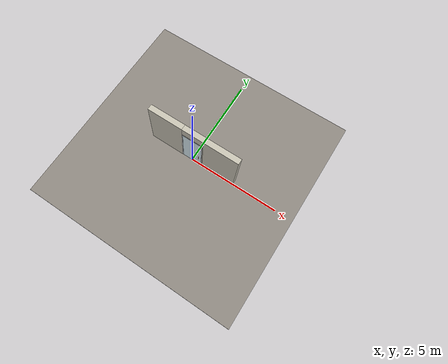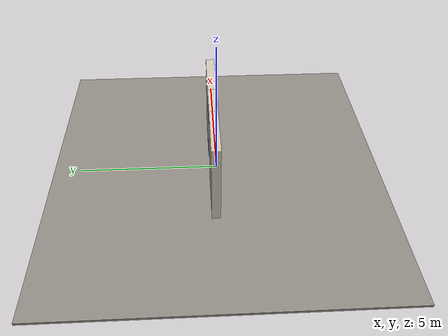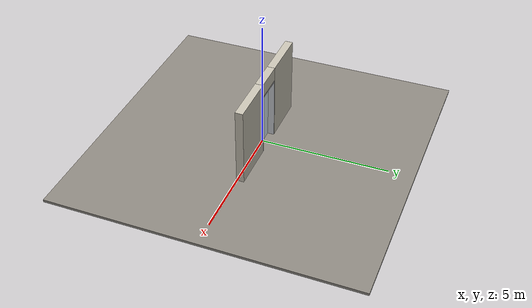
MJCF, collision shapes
<?xml version="1.0" ?>
<mujoco model="db0897_swing_single_minimal">
  <compiler angle="radian" meshdir="../../hardware" texturedir="../../textures" autolimits="true" inertiafromgeom="false"/>
  <option timestep="0.002" integrator="implicitfast" cone="elliptic" impratio="10" noslip_iterations="3">
    <flag multiccd="enable"/>
  </option>
  <size memory="16M"/>
  <default>
    <geom condim="4" solref="0.005 1" solimp="0.95 0.99 0.001"/>
    <joint solreflimit="0.005 1" solimplimit="0.95 0.99 0.001"/>
    <tendon solreflimit="0.005 1"/>
    <equality solref="0.002 1"/>
  </default>
  <visual>
    <headlight ambient="0.4 0.4 0.4" diffuse="0.7 0.7 0.7" specular="0.2 0.2 0.2"/>
    <quality shadowsize="4096"/>
    <map znear="0.01" zfar="60"/>
  </visual>
  <asset>
    <mesh name="pull_f8d79d6331" file="pull_f8d79d6331.obj"/>
    <material name="mat_floor" rgba="0.55 0.53 0.5 1" specular="0.2" shininess="0.15" reflectance="0"/>
    <material name="mat_wall" rgba="0.78 0.76 0.7 1" specular="0.2" shininess="0.1" reflectance="0"/>
    <material name="mat_leaf" rgba="0.85 0.92 0.95 0.25" specular="0.2" shininess="0.95" reflectance="0.1"/>
    <material name="mat_glass_leaf" rgba="0.85 0.92 0.95 0.25" specular="0.2" shininess="0.95" reflectance="0.1"/>
    <material name="mat_patch" rgba="0.75 0.76 0.77 1" specular="0.8" shininess="0.65" reflectance="0.4"/>
    <material name="mat_hinge" rgba="0.65 0.66 0.68 1" specular="0.74" shininess="0.5" reflectance="0.36"/>
    <material name="mat_op_stainless" rgba="0.75 0.76 0.77 1" specular="0.8" shininess="0.65" reflectance="0.4"/>
    <material name="mat_maglock" rgba="0.22 0.17 0.13 1" specular="0.8" shininess="0.6" reflectance="0.4"/>
    <material name="mat_frame" rgba="0.8 0.81 0.83 1" specular="0.8" shininess="0.6" reflectance="0.4"/>
    <material name="mat_closer" rgba="0.22 0.17 0.13 1" specular="0.8" shininess="0.6" reflectance="0.4"/>
    <material name="mat_sign" rgba="0.75 0.76 0.77 1" specular="0.8" shininess="0.65" reflectance="0.4"/>
    <texture name="skybox" type="skybox" builtin="gradient" rgb1="0.6 0.7 0.85" rgb2="0.9 0.92 0.95" width="256" height="256"/>
  </asset>
  <worldbody>
    <light name="sun" pos="1.5 -2.5 4" dir="-0.3 0.5 -0.8" directional="true" diffuse="0.8 0.8 0.8" specular="0.3 0.3 0.3" castshadow="true"/>
    <light name="fill" pos="-1.5 2.5 3" dir="0.3 -0.5 -0.7" directional="true" diffuse="0.35 0.35 0.4" castshadow="false"/>
    <camera name="robot_view" pos="0 -2.802313 2.043887" xyaxes="1 0 0 0 0.26963 0.962964" fovy="52"/>
    <camera name="far_view" pos="0 3.043312 2.043887" xyaxes="-1 0 0 0 -0.26963 0.962964" fovy="52"/>
    <camera name="iso" pos="2.221337 -2.334663 2.511538" xyaxes="0.741536 0.670913 0 -0.242917 0.268487 0.932151" fovy="46"/>
    <camera name="detail_handle" pos="0.6065 -0.8975 1.296" xyaxes="0.97561 0.219512 0 -0.070934 0.315262 0.94635" fovy="38"/>
    <geom name="floor" type="box" size="6 6 0.05" pos="0 0 -0.05" material="mat_floor" group="0" contype="1" conaffinity="1" friction="0.8 0.005 0.0001" density="2400"/>
    <geom name="wall_left" type="box" size="0.95825 0.15 1.5255" pos="-1.54175 0.1205 1.5255" material="mat_wall" group="0" contype="1" conaffinity="1" friction="0.6 0.005 0.0001" density="800"/>
    <geom name="wall_right" type="box" size="0.94325 0.15 1.5255" pos="1.55675 0.1205 1.5255" material="mat_wall" group="0" contype="1" conaffinity="1" friction="0.6 0.005 0.0001" density="800"/>
    <geom name="wall_header" type="box" size="0.5985 0.15 0.2625" pos="0.015 0.1205 2.7885" material="mat_wall" group="0" contype="1" conaffinity="1" friction="0.6 0.005 0.0001" density="800"/>
    <geom name="jamb_hinge" type="box" size="0.0225 0.15 1.2255" pos="-0.561 0.1205 1.2255" material="mat_frame" group="0" contype="1" conaffinity="1" friction="0.6 0.005 0.0001" density="300"/>
    <geom name="jamb_strike" type="box" size="0.0225 0.15 1.2255" pos="0.561 0.1205 1.2255" material="mat_frame" group="0" contype="1" conaffinity="1" friction="0.6 0.005 0.0001" density="300"/>
    <geom name="stud_strike" type="box" size="0.015 0.15 1.2255" pos="0.5985 0.1205 1.2255" material="mat_wall" group="0" contype="1" conaffinity="1" friction="0.6 0.005 0.0001" density="500"/>
    <geom name="jamb_head" type="box" size="0.5985 0.15 0.0225" pos="0.015 0.1205 2.4735" material="mat_frame" group="0" contype="1" conaffinity="1" friction="0.6 0.005 0.0001" density="300"/>
    <geom name="head_stud" type="box" size="0.5985 0.15 0.015" pos="0.015 0.1205 2.511" material="mat_wall" group="0" contype="1" conaffinity="1" friction="0.6 0.005 0.0001" density="500"/>
    <site name="approach_point" pos="0 -1.5 0" quat="1 0 0 0" size="0.05" rgba="0.2 0.9 0.2 0.5" group="4"/>
    <site name="goal_point" pos="0 1.5 0" quat="1 0 0 0" size="0.05" rgba="0.2 0.9 0.2 0.5" group="4"/>
    <site name="door_plane_center" pos="0 0 1.2255" quat="1 0 0 0" size="0.02" rgba="0.2 0.9 0.2 0.5" group="4"/>
    <body name="leaf" pos="-0.5385 0 0">
      <inertial pos="0.546245 0 1.223179" mass="132.12224" quat="0.501298 0.501298 0.498699 -0.498699" diaginertia="12.834223908 64.158241388 76.899651071"/>
      <joint name="leaf_hinge" type="hinge" axis="0 0 -1" pos="0.019 -0.0325 0" limited="true" range="0 2.443461" solreflimit="0.02 1" damping="10.570702" frictionloss="2.010866" stiffness="46.556004" springref="-2.354584" armature="0.02"/>
      <geom name="leaf_glass" type="box" size="0.5335 0.0225 1.219" pos="0.5365 0 1.228" material="mat_glass_leaf" group="0" contype="1" conaffinity="1" friction="0.4 0.005 0.0001" density="1"/>
      <geom name="leaf_pull_n" type="mesh" mesh="pull_f8d79d6331" pos="0.965 -0.0225 1.016" quat="0.707107 0.707107 0 0" material="mat_op_stainless" group="1" contype="0" conaffinity="0" density="3000"/>
      <geom name="leaf_pull_col_n" type="capsule" size="0.0125 0.13" pos="0.965 -0.0975 1.016" material="mat_op_stainless" group="3" contype="1" conaffinity="1" rgba="0.8 0.3 0.3 0.25" friction="0.7 0.01 0.0001" density="3000"/>
      <geom name="leaf_pull_p" type="mesh" mesh="pull_f8d79d6331" pos="0.965 0.0225 1.016" quat="-0.707107 0.707107 0 0" material="mat_op_stainless" group="1" contype="0" conaffinity="0" density="3000"/>
      <geom name="leaf_pull_col_p" type="capsule" size="0.0125 0.13" pos="0.965 0.0975 1.016" material="mat_op_stainless" group="3" contype="1" conaffinity="1" rgba="0.8 0.3 0.3 0.25" friction="0.7 0.01 0.0001" density="3000"/>
      <site name="leaf_pull_grip_n" pos="0.965 -0.0975 1.016" quat="1 0 0 0" size="0.012" rgba="0.2 0.9 0.2 0.5" group="4"/>
      <site name="leaf_pull_grip_p" pos="0.965 0.0975 1.016" quat="1 0 0 0" size="0.012" rgba="0.2 0.9 0.2 0.5" group="4"/>
      <site name="leaf_edge_mid" pos="1.07 0 1.219" quat="1 0 0 0" size="0.02" rgba="0.2 0.9 0.2 0.5" group="4"/>
    </body>
  </worldbody>
  <equality>
    <weld name="leaf_maglock" body1="leaf" body2="world" active="true"/>
  </equality>
  <sensor>
    <jointpos name="leaf_hinge_pos" joint="leaf_hinge"/>
    <jointvel name="leaf_hinge_vel" joint="leaf_hinge"/>
  </sensor>
</mujoco>
